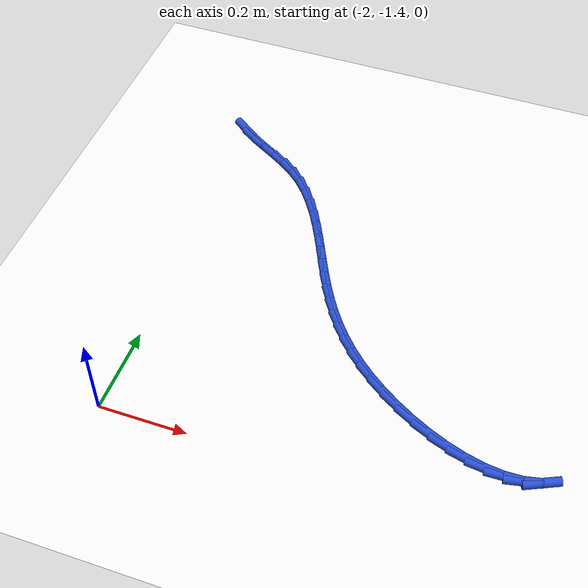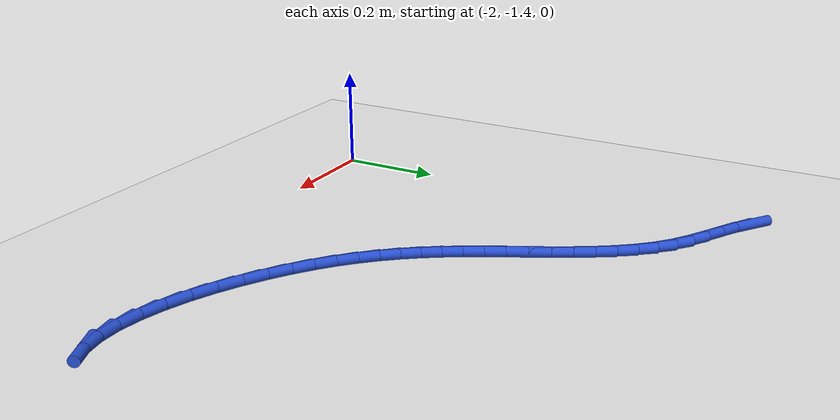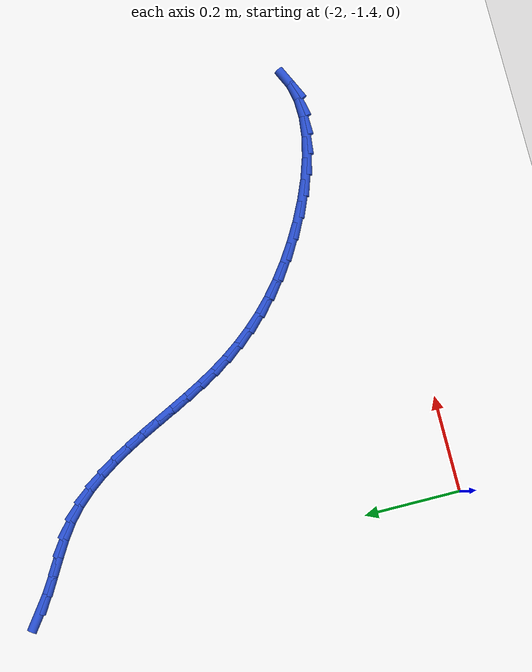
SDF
<sdf version="1.6">
 <world name="default">
  <model name="ground_plane">
   <static>1</static>
   <link name="link">
    <collision name="collision">
     <geometry><plane><normal>0 0 1</normal><size>100 100</size></plane></geometry>
     <surface><friction><ode><mu>100</mu><mu2>50</mu2></ode></friction></surface>
    </collision>
    <visual name="visual">
     <cast_shadows>0</cast_shadows>
     <geometry><plane><normal>0 0 1</normal><size>100 100</size></plane></geometry>
     <material>
      <script><uri>file://media/materials/scripts/gazebo.material</uri><name>Gazebo/WhiteGlow</name></script>
     </material>
    </visual>
   </link>
  </model>
  <model name="line">
   <link name="link_119">
    <pose>-2.027700977625316 -0.5184810968472152 0.01 0 1.57 -0.6304509835738361</pose>
    <collision name="collision">
     <geometry><cylinder><radius>0.01</radius><length>0.08</length></cylinder></geometry>
    </collision>
    <visual name="visual">
     <material>
      <script><name>Gazebo/Blue</name><uri>file://media/materials/scripts/gazebo.material</uri></script>
     </material>
     <geometry><cylinder><radius>0.01</radius><length>0.08</length></cylinder></geometry>
    </visual>
   </link>
   <link name="link_120">
    <pose>-1.9964028659867115 -0.5413226367030137 0.01 0 1.57 -0.5525527002575356</pose>
    <collision name="collision">
     <geometry><cylinder><radius>0.01</radius><length>0.08</length></cylinder></geometry>
    </collision>
    <visual name="visual">
     <material>
      <script><name>Gazebo/Blue</name><uri>file://media/materials/scripts/gazebo.material</uri></script>
     </material>
     <geometry><cylinder><radius>0.01</radius><length>0.08</length></cylinder></geometry>
    </visual>
   </link>
   <link name="link_121">
    <pose>-1.963525462439764 -0.5615955993080887 0.01 0 1.57 -0.5215471170776093</pose>
    <collision name="collision">
     <geometry><cylinder><radius>0.01</radius><length>0.08</length></cylinder></geometry>
    </collision>
    <visual name="visual">
     <material>
      <script><name>Gazebo/Blue</name><uri>file://media/materials/scripts/gazebo.material</uri></script>
     </material>
     <geometry><cylinder><radius>0.01</radius><length>0.08</length></cylinder></geometry>
    </visual>
   </link>
   <link name="link_122">
    <pose>-1.9301924549279788 -0.58074934399035 0.01 0 1.57 -0.5391895917518909</pose>
    <collision name="collision">
     <geometry><cylinder><radius>0.01</radius><length>0.08</length></cylinder></geometry>
    </collision>
    <visual name="visual">
     <material>
      <script><name>Gazebo/Blue</name><uri>file://media/materials/scripts/gazebo.material</uri></script>
     </material>
     <geometry><cylinder><radius>0.01</radius><length>0.08</length></cylinder></geometry>
    </visual>
   </link>
   <link name="link_123">
    <pose>-1.8975549329293067 -0.6002773054320338 0.01 0 1.57 -0.6072726821429983</pose>
    <collision name="collision">
     <geometry><cylinder><radius>0.01</radius><length>0.08</length></cylinder></geometry>
    </collision>
    <visual name="visual">
     <material>
      <script><name>Gazebo/Blue</name><uri>file://media/materials/scripts/gazebo.material</uri></script>
     </material>
     <geometry><cylinder><radius>0.01</radius><length>0.08</length></cylinder></geometry>
    </visual>
   </link>
   <link name="link_124">
    <pose>-1.8667639859216973 -0.6216729183153755 0.01 0 1.57 -0.7186254250632779</pose>
    <collision name="collision">
     <geometry><cylinder><radius>0.01</radius><length>0.08</length></cylinder></geometry>
    </collision>
    <visual name="visual">
     <material>
      <script><name>Gazebo/Blue</name><uri>file://media/materials/scripts/gazebo.material</uri></script>
     </material>
     <geometry><cylinder><radius>0.01</radius><length>0.08</length></cylinder></geometry>
    </visual>
   </link>
   <link name="link_125">
    <pose>-1.8387631461139067 -0.646163540999085 0.01 0 1.57 -0.8271419067464992</pose>
    <collision name="collision">
     <geometry><cylinder><radius>0.01</radius><length>0.08</length></cylinder></geometry>
    </collision>
    <visual name="visual">
     <material>
      <script><name>Gazebo/Blue</name><uri>file://media/materials/scripts/gazebo.material</uri></script>
     </material>
     <geometry><cylinder><radius>0.01</radius><length>0.08</length></cylinder></geometry>
    </visual>
   </link>
   <link name="link_126">
    <pose>-1.8134701453652642 -0.673661515573338 0.01 0 1.57 -0.9172496909418383</pose>
    <collision name="collision">
     <geometry><cylinder><radius>0.01</radius><length>0.08</length></cylinder></geometry>
    </collision>
    <visual name="visual">
     <material>
      <script><name>Gazebo/Blue</name><uri>file://media/materials/scripts/gazebo.material</uri></script>
     </material>
     <geometry><cylinder><radius>0.01</radius><length>0.08</length></cylinder></geometry>
    </visual>
   </link>
   <link name="link_127">
    <pose>-1.7904863748812911 -0.7036736538451557 0.01 0 1.57 -0.9889152289849379</pose>
    <collision name="collision">
     <geometry><cylinder><radius>0.01</radius><length>0.08</length></cylinder></geometry>
    </collision>
    <visual name="visual">
     <material>
      <script><name>Gazebo/Blue</name><uri>file://media/materials/scripts/gazebo.material</uri></script>
     </material>
     <geometry><cylinder><radius>0.01</radius><length>0.08</length></cylinder></geometry>
    </visual>
   </link>
   <link name="link_128">
    <pose>-1.769413136095603 -0.7357066525392101 0.01 0 1.57 -1.0430684377640869</pose>
    <collision name="collision">
     <geometry><cylinder><radius>0.01</radius><length>0.08</length></cylinder></geometry>
    </collision>
    <visual name="visual">
     <material>
      <script><name>Gazebo/Blue</name><uri>file://media/materials/scripts/gazebo.material</uri></script>
     </material>
     <geometry><cylinder><radius>0.01</radius><length>0.08</length></cylinder></geometry>
    </visual>
   </link>
   <link name="link_129">
    <pose>-1.7498517304418149 -0.7692672083801728 0.01 0 1.57 -1.0808906298689596</pose>
    <collision name="collision">
     <geometry><cylinder><radius>0.01</radius><length>0.08</length></cylinder></geometry>
    </collision>
    <visual name="visual">
     <material>
      <script><name>Gazebo/Blue</name><uri>file://media/materials/scripts/gazebo.material</uri></script>
     </material>
     <geometry><cylinder><radius>0.01</radius><length>0.08</length></cylinder></geometry>
    </visual>
   </link>
   <link name="link_130">
    <pose>-1.731403459353543 -0.8038620180927163 0.01 0 1.57 -1.103377262146465</pose>
    <collision name="collision">
     <geometry><cylinder><radius>0.01</radius><length>0.08</length></cylinder></geometry>
    </collision>
    <visual name="visual">
     <material>
      <script><name>Gazebo/Blue</name><uri>file://media/materials/scripts/gazebo.material</uri></script>
     </material>
     <geometry><cylinder><radius>0.01</radius><length>0.08</length></cylinder></geometry>
    </visual>
   </link>
   <link name="link_131">
    <pose>-1.713669624264403 -0.8389977784015117 0.01 0 1.57 -1.1111039590173586</pose>
    <collision name="collision">
     <geometry><cylinder><radius>0.01</radius><length>0.08</length></cylinder></geometry>
    </collision>
    <visual name="visual">
     <material>
      <script><name>Gazebo/Blue</name><uri>file://media/materials/scripts/gazebo.material</uri></script>
     </material>
     <geometry><cylinder><radius>0.01</radius><length>0.08</length></cylinder></geometry>
    </visual>
   </link>
   <link name="link_132">
    <pose>-1.6962515266080112 -0.8741811860312316 0.01 0 1.57 -1.104109219748695</pose>
    <collision name="collision">
     <geometry><cylinder><radius>0.01</radius><length>0.08</length></cylinder></geometry>
    </collision>
    <visual name="visual">
     <material>
      <script><name>Gazebo/Blue</name><uri>file://media/materials/scripts/gazebo.material</uri></script>
     </material>
     <geometry><cylinder><radius>0.01</radius><length>0.08</length></cylinder></geometry>
    </visual>
   </link>
   <link name="link_133">
    <pose>-1.6787504678179825 -0.9089189377065475 0.01 0 1.57 -1.0818381681381983</pose>
    <collision name="collision">
     <geometry><cylinder><radius>0.01</radius><length>0.08</length></cylinder></geometry>
    </collision>
    <visual name="visual">
     <material>
      <script><name>Gazebo/Blue</name><uri>file://media/materials/scripts/gazebo.material</uri></script>
     </material>
     <geometry><cylinder><radius>0.01</radius><length>0.08</length></cylinder></geometry>
    </visual>
   </link>
   <link name="link_134">
    <pose>-1.6607677579842557 -0.9427178065400991 0.01 0 1.57 -1.0451473769756208</pose>
    <collision name="collision">
     <geometry><cylinder><radius>0.01</radius><length>0.08</length></cylinder></geometry>
    </collision>
    <visual name="visual">
     <material>
      <script><name>Gazebo/Blue</name><uri>file://media/materials/scripts/gazebo.material</uri></script>
     </material>
     <geometry><cylinder><radius>0.01</radius><length>0.08</length></cylinder></geometry>
    </visual>
   </link>
   <link name="link_135">
    <pose>-1.6419190089031819 -0.9752107714617348 0.01 0 1.57 -0.9995433719176741</pose>
    <collision name="collision">
     <geometry><cylinder><radius>0.01</radius><length>0.08</length></cylinder></geometry>
    </collision>
    <visual name="visual">
     <material>
      <script><name>Gazebo/Blue</name><uri>file://media/materials/scripts/gazebo.material</uri></script>
     </material>
     <geometry><cylinder><radius>0.01</radius><length>0.08</length></cylinder></geometry>
    </visual>
   </link>
   <link name="link_136">
    <pose>-1.6218632948061735 -1.0064143469023383 0.01 0 1.57 -0.9469266963190535</pose>
    <collision name="collision">
     <geometry><cylinder><radius>0.01</radius><length>0.08</length></cylinder></geometry>
    </collision>
    <visual name="visual">
     <material>
      <script><name>Gazebo/Blue</name><uri>file://media/materials/scripts/gazebo.material</uri></script>
     </material>
     <geometry><cylinder><radius>0.01</radius><length>0.08</length></cylinder></geometry>
    </visual>
   </link>
   <link name="link_137">
    <pose>-1.6002679156641364 -1.0364176355661845 0.01 0 1.57 -0.8886276204709622</pose>
    <collision name="collision">
     <geometry><cylinder><radius>0.01</radius><length>0.08</length></cylinder></geometry>
    </collision>
    <visual name="visual">
     <material>
      <script><name>Gazebo/Blue</name><uri>file://media/materials/scripts/gazebo.material</uri></script>
     </material>
     <geometry><cylinder><radius>0.01</radius><length>0.08</length></cylinder></geometry>
    </visual>
   </link>
   <link name="link_138">
    <pose>-1.576800171447977 -1.0653097401575484 0.01 0 1.57 -0.8264117160069646</pose>
    <collision name="collision">
     <geometry><cylinder><radius>0.01</radius><length>0.08</length></cylinder></geometry>
    </collision>
    <visual name="visual">
     <material>
      <script><name>Gazebo/Blue</name><uri>file://media/materials/scripts/gazebo.material</uri></script>
     </material>
     <geometry><cylinder><radius>0.01</radius><length>0.08</length></cylinder></geometry>
    </visual>
   </link>
   <link name="link_139">
    <pose>-1.551127362128601 -1.0931797633807048 0.01 0 1.57 -0.76230915973588</pose>
    <collision name="collision">
     <geometry><cylinder><radius>0.01</radius><length>0.08</length></cylinder></geometry>
    </collision>
    <visual name="visual">
     <material>
      <script><name>Gazebo/Blue</name><uri>file://media/materials/scripts/gazebo.material</uri></script>
     </material>
     <geometry><cylinder><radius>0.01</radius><length>0.08</length></cylinder></geometry>
    </visual>
   </link>
   <link name="link_140">
    <pose>-1.5229167876769152 -1.1201168079399284 0.01 0 1.57 -0.6983786007300473</pose>
    <collision name="collision">
     <geometry><cylinder><radius>0.01</radius><length>0.08</length></cylinder></geometry>
    </collision>
    <visual name="visual">
     <material>
      <script><name>Gazebo/Blue</name><uri>file://media/materials/scripts/gazebo.material</uri></script>
     </material>
     <geometry><cylinder><radius>0.01</radius><length>0.08</length></cylinder></geometry>
    </visual>
   </link>
   <link name="link_141">
    <pose>-1.4918357480638265 -1.146209976539494 0.01 0 1.57 -0.6364687795395487</pose>
    <collision name="collision">
     <geometry><cylinder><radius>0.01</radius><length>0.08</length></cylinder></geometry>
    </collision>
    <visual name="visual">
     <material>
      <script><name>Gazebo/Blue</name><uri>file://media/materials/scripts/gazebo.material</uri></script>
     </material>
     <geometry><cylinder><radius>0.01</radius><length>0.08</length></cylinder></geometry>
    </visual>
   </link>
   <link name="link_142">
    <pose>-1.4575520328225293 -1.1715480233037932 0.01 0 1.57 -0.5777294937103543</pose>
    <collision name="collision">
     <geometry><cylinder><radius>0.01</radius><length>0.08</length></cylinder></geometry>
    </collision>
    <visual name="visual">
     <material>
      <script><name>Gazebo/Blue</name><uri>file://media/materials/scripts/gazebo.material</uri></script>
     </material>
     <geometry><cylinder><radius>0.01</radius><length>0.08</length></cylinder></geometry>
    </visual>
   </link>
   <link name="link_143">
    <pose>-1.4200107933260218 -1.1960222141925285 0.01 0 1.57 -0.5201348907193892</pose>
    <collision name="collision">
     <geometry><cylinder><radius>0.01</radius><length>0.08</length></cylinder></geometry>
    </collision>
    <visual name="visual">
     <material>
      <script><name>Gazebo/Blue</name><uri>file://media/materials/scripts/gazebo.material</uri></script>
     </material>
     <geometry><cylinder><radius>0.01</radius><length>0.08</length></cylinder></geometry>
    </visual>
   </link>
   <link name="link_144">
    <pose>-1.379897143975827 -1.218996944055291 0.01 0 1.57 -0.46007498142923214</pose>
    <collision name="collision">
     <geometry><cylinder><radius>0.01</radius><length>0.08</length></cylinder></geometry>
    </collision>
    <visual name="visual">
     <material>
      <script><name>Gazebo/Blue</name><uri>file://media/materials/scripts/gazebo.material</uri></script>
     </material>
     <geometry><cylinder><radius>0.01</radius><length>0.08</length></cylinder></geometry>
    </visual>
   </link>
   <link name="link_145">
    <pose>-1.3380182641209017 -1.2397496946232038 0.01 0 1.57 -0.39398589431440517</pose>
    <collision name="collision">
     <geometry><cylinder><radius>0.01</radius><length>0.08</length></cylinder></geometry>
    </collision>
    <visual name="visual">
     <material>
      <script><name>Gazebo/Blue</name><uri>file://media/materials/scripts/gazebo.material</uri></script>
     </material>
     <geometry><cylinder><radius>0.01</radius><length>0.08</length></cylinder></geometry>
    </visual>
   </link>
   <link name="link_146">
    <pose>-1.2951813331102016 -1.2575579476273904 0.01 0 1.57 -0.3178087649547491</pose>
    <collision name="collision">
     <geometry><cylinder><radius>0.01</radius><length>0.08</length></cylinder></geometry>
    </collision>
    <visual name="visual">
     <material>
      <script><name>Gazebo/Blue</name><uri>file://media/materials/scripts/gazebo.material</uri></script>
     </material>
     <geometry><cylinder><radius>0.01</radius><length>0.08</length></cylinder></geometry>
    </visual>
   </link>
   <link name="link_147">
    <pose>-1.2521935302926819 -1.2716991847989731 0.01 0 1.57 -0.22641520501573817</pose>
    <collision name="collision">
     <geometry><cylinder><radius>0.01</radius><length>0.08</length></cylinder></geometry>
    </collision>
    <visual name="visual">
     <material>
      <script><name>Gazebo/Blue</name><uri>file://media/materials/scripts/gazebo.material</uri></script>
     </material>
     <geometry><cylinder><radius>0.01</radius><length>0.08</length></cylinder></geometry>
    </visual>
   </link>
   <link name="link_148">
    <pose>-1.2098620350172982 -1.2814508878690751 0.01 0 1.57 -0.11304369481216064</pose>
    <collision name="collision">
     <geometry><cylinder><radius>0.01</radius><length>0.08</length></cylinder></geometry>
    </collision>
    <visual name="visual">
     <material>
      <script><name>Gazebo/Blue</name><uri>file://media/materials/scripts/gazebo.material</uri></script>
     </material>
     <geometry><cylinder><radius>0.01</radius><length>0.08</length></cylinder></geometry>
    </visual>
   </link>
   <link name="link_149">
    <pose>-1.1689940266330063 -1.2860905385688197 0.01 0 1.57 0.03094872188971975</pose>
    <collision name="collision">
     <geometry><cylinder><radius>0.01</radius><length>0.08</length></cylinder></geometry>
    </collision>
    <visual name="visual">
     <material>
      <script><name>Gazebo/Blue</name><uri>file://media/materials/scripts/gazebo.material</uri></script>
     </material>
     <geometry><cylinder><radius>0.01</radius><length>0.08</length></cylinder></geometry>
    </visual>
   </link>
   <link name="link_150">
    <pose>-1.1303966844887627 -1.2848956186293308 0.01 0 1.57 0.21487722400005962</pose>
    <collision name="collision">
     <geometry><cylinder><radius>0.01</radius><length>0.08</length></cylinder></geometry>
    </collision>
    <visual name="visual">
     <material>
      <script><name>Gazebo/Blue</name><uri>file://media/materials/scripts/gazebo.material</uri></script>
     </material>
     <geometry><cylinder><radius>0.01</radius><length>0.08</length></cylinder></geometry>
    </visual>
   </link>
   <link name="link_151">
    <pose>-1.0948771879335226 -1.2771436097817308 0.01 0 1.57 0.4435835285641605</pose>
    <collision name="collision">
     <geometry><cylinder><radius>0.01</radius><length>0.08</length></cylinder></geometry>
    </collision>
    <visual name="visual">
     <material>
      <script><name>Gazebo/Blue</name><uri>file://media/materials/scripts/gazebo.material</uri></script>
     </material>
     <geometry><cylinder><radius>0.01</radius><length>0.08</length></cylinder></geometry>
    </visual>
   </link>
  </model>
 </world>
</sdf>
